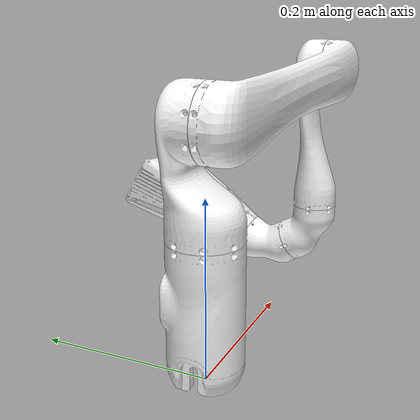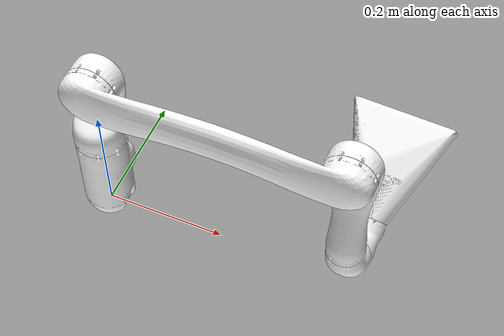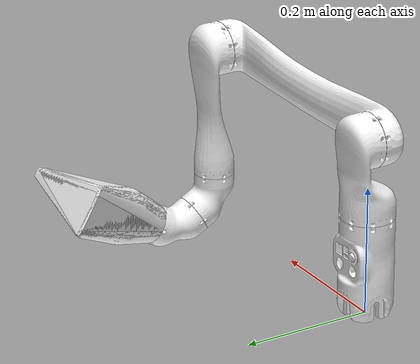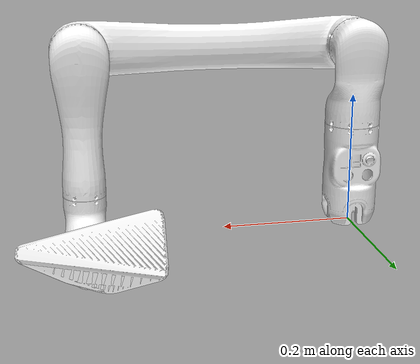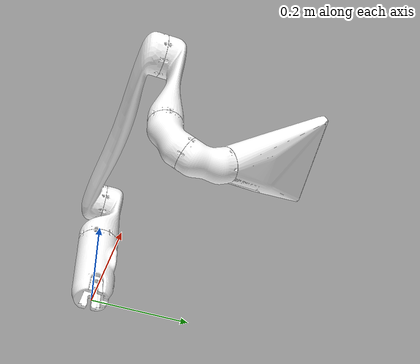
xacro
<?xml version="1.0"?>
<robot xmlns:xacro="http://www.ros.org/wiki/xacro"
       name="jaco2" >

  <!-- common stuff -->
  <xacro:include filename="$(find jaco2)/urdf/gazebo.urdf.xacro" />

  <!-- jaco2 -->
  <xacro:include filename="$(find jaco2)/urdf/jaco2.urdf.xacro" />

  <link name="world"/>
  <joint name="world_joint" type="fixed">
    <parent link="world"/>
    <child link="root"/>
    <origin rpy="0.0 0.0 0.0" xyz="0.0 0.0 0.0"/>
  </joint>

</robot>

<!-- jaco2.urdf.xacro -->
<robot xmlns:xacro="http://www.ros.org/wiki/xacro">

  <xacro:include filename="$(find jaco2)/urdf/jaco2.transmission.xacro" />

    <link name="root">
      <visual>
	<geometry>
	  <mesh filename="package://jaco2/meshes/root.STL" />
	</geometry>
	<material name="Black">
	  <color rgba="1 1 1 1" />
	</material>
      </visual>
      <collision>
	<geometry>
          <mesh filename="package://jaco2/meshes/root.stl" />
	</geometry>
      </collision>
    </link>

    <gazebo reference="root">
        <material>Gazebo/Grey</material>
    </gazebo>

    <link name="jaco_link_base">
      <inertial>
        <origin xyz="-0.00048086 -0.0009379 0.062122" rpy="0.0 0.0 0.0" />
	<mass value="0.0064" />
	<inertia
	  ixx="0.00052184"
	  ixy="-2.8998E-06"
	  ixz="-4.2007E-06"
	  iyy="0.0005163"
	  iyz="1.4357E-05"
	  izz="0.00025116" />
      </inertial>
      <visual>
	<geometry>
	  <mesh filename="package://jaco2/meshes/jaco_link_base.STL" />
	</geometry>
	<material name="Black">
	  <color rgba="1 1 1 1" />
	</material>
      </visual>
      <collision>
	<geometry>
	  <mesh filename="package://jaco2/meshes/jaco_link_base.stl" />
	</geometry>
      </collision>
    </link>

    <gazebo reference="jaco_link_base">
        <material>Gazebo/Grey</material>
    </gazebo>

    <joint name="jaco_joint_base" type="fixed">
      <origin xyz="0.0 0.0 0.0" rpy="0.0 0.0 0.0" />
      <parent link="root" />
      <child link="jaco_link_base" />
      <axis xyz="0.0 0 0" />
    </joint>

    <link name="jaco_link_1">
      <inertial>
        <origin xyz="-2.5613E-05 0.010847 -0.049232" rpy="0 0 0" />
        <mass value="0.0060" />
        <inertia
	  ixx="0.00022732"
	  ixy="-9.3733E-09"
	  ixz="-1.4106E-07"
	  iyy="0.00024309"
	  iyz="2.9898E-05"
	  izz="9.0733E-05" />
      </inertial>
      <visual>
	<geometry>
	  <mesh filename="package://jaco2/meshes/jaco_link_1.STL" />
	</geometry>
	<material name="Black">
	  <color rgba="1 1 1 1" />
	</material>
      </visual>
      <collision>
	<geometry>
	  <mesh filename="package://jaco2/meshes/jaco_link_1.stl" />
	</geometry>
      </collision>
    </link>

    <gazebo reference="jaco_link_1">
        <material>Gazebo/Grey</material>
    </gazebo>

    <joint name="jaco_joint_1" type="revolute">
      <origin xyz="0.0 0.0 0.2755" rpy="0.0 0.0 0.0" />
      <parent link="jaco_link_base" />
      <child link="jaco_link_1" />
      <axis xyz="0.0 0.0 -1.0" />
      <limit effort="150.0" lower="-6.2831853" upper="6.2831853" velocity="3.15"/>
      <dynamics damping="0.0" friction="0.0"/>
    </joint>

    <link name="jaco_link_2">
      <inertial>
        <origin xyz="0.20365 4.2202E-05 -0.033866" rpy="0.0 0.0 0.0" />
	<mass value="0.0057" />
	<inertia
	  ixx="0.00012024"
	  ixy="1.6528E-07"
	  ixz="-0.00016726"
	  iyy="0.0035495"
	  iyz="-2.6936E-08"
	  izz="0.0036058" />
      </inertial>
      <visual>
	<geometry>
	  <mesh filename="package://jaco2/meshes/jaco_link_2.STL" />
	</geometry>
	<material name="Black">
	  <color rgba="1 1 1 1" />
	</material>
      </visual>
      <collision>
	<geometry>
	  <mesh filename="package://jaco2/meshes/jaco_link_2.stl" />
	</geometry>
      </collision>
    </link>

    <gazebo reference="jaco_link_2">
        <material>Gazebo/Grey</material>
    </gazebo>

    <joint name="jaco_joint_2" type="revolute">
      <origin xyz="0.0 0.0 0.0" rpy="-1.571 -0.0047116 0.047796" />
      <parent link="jaco_link_1" />
      <child link="jaco_link_2" />
      <axis xyz="0.047778 0 0.99886" />
      <limit lower="-3.8223" upper="0.69813" effort="150.0" velocity="3.15" />
      <dynamics damping="0.0" friction="0.0"/>
    </joint>

    <link name="jaco_link_3">
      <inertial>
        <origin xyz="3.97161549881009E-06 -0.0639591049584705 -0.00776484013323698" rpy="0 0 0" />
        <mass value="0.0060" />
	<inertia
	  ixx="0.000394848359931103"
	  ixy="1.3834611049663E-07"
	  ixz="-1.13410769041363E-08"
	  iyy="5.28367288413468E-05"
	  iyz="-1.41783013459014E-05"
	  izz="0.00041829974857606" />
      </inertial>
      <visual>
        <geometry>
          <mesh filename="package://jaco2/meshes/jaco_link_3.STL" />
        </geometry>
        <material name="Black">
	  <color rgba="1 1 1 1" />
	</material>
      </visual>
      <collision>
	<geometry>
	  <mesh filename="package://jaco2/meshes/jaco_link_3.stl" />
	</geometry>
      </collision>
    </link>

    <gazebo reference="jaco_link_3">
        <material>Gazebo/Grey</material>
    </gazebo>

    <joint name="jaco_joint_3" type="revolute">
      <origin xyz="0.41 0 -0.0098" rpy="3.1416 0.047796 -8.7885E-05" />
      <parent link="jaco_link_2" />
      <child link="jaco_link_3" />
      <axis xyz="0.0 0.0 1.0" />
      <limit lower="-1.2392" upper="4.3808" effort="150.0" velocity="3.15" />
      <dynamics damping="0.0" friction="0.0"/>
    </joint>

    <link name="jaco_link_4">
      <inertial>
        <origin xyz="-8.9415E-06 0.0076371 0.0043996" rpy="0.0 0.0 0.0" />
        <mass value="0.0037" />
        <inertia
          ixx="3.2741E-05"
	  ixy="-4.6123E-09"
	  ixz="2.119E-09"
	  iyy="3.3128E-05"
	  iyz="-3.6398E-06"
	  izz="2.8899E-05" />
	</inertial>
	<visual>
	  <geometry>
	    <mesh filename="package://jaco2/meshes/jaco_link_4.STL" />
	  </geometry>
	  <material name="Black">
	    <color rgba="1 1 1 1" />
	  </material>
	</visual>
	<collision>
	  <geometry>
	    <mesh filename="package://jaco2/meshes/jaco_link_4.stl" />
	  </geometry>
	</collision>
      </link>

      <gazebo reference="jaco_link_4">
          <material>Gazebo/Grey</material>
      </gazebo>

      <joint name="jaco_joint_4" type="revolute">
	<origin xyz="0 -0.250007041555164 0" rpy="-1.5707963267949 -0.00872928550116707 -2.51544487854265E-17" />
	<parent link="jaco_link_3" />
	<child link="jaco_link_4" />
	<axis xyz="0.0 0.0 1.0" />
	<limit effort="150.0" lower="-6.2831853" upper="6.2831853" velocity="3.15"/>
	<dynamics damping="0.0" friction="0.0"/>
      </joint>

      <link name="jaco_link_5">
        <inertial>
          <origin xyz="-8.03918582154006E-06 0.00763799005245824 0.00439948624791736" rpy="0 0 0" />
	  <mass value="0.0037" />
	  <inertia
	    ixx="3.27418465657114E-05"
	    ixy="-4.99510510229687E-09"
	    ixz="2.41495135849963E-09"
	    iyy="3.31268784561237E-05"
	    iyz="-3.63861583896267E-06"
	    izz="2.88972602355983E-05" />
	</inertial>
	<visual>
	  <geometry>
	    <mesh filename="package://jaco2/meshes/jaco_link_5.STL" />
	  </geometry>
	  <material name="Black">
            <color rgba="1 1 1 1.0" />
	  </material>
	</visual>
	<collision>
	  <geometry>
	    <mesh filename="package://jaco2/meshes/jaco_link_5.stl" />
	  </geometry>
	</collision>
      </link>

      <gazebo reference="jaco_link_5">
          <material>Gazebo/Grey</material>
      </gazebo>

      <joint name="jaco_joint_5" type="revolute">
	<origin xyz="0 0.0740573683548742 -0.0427570415551623" rpy="1.04719681759719 -0.00159413288422581 0.000920373959407822" />
	<parent link="jaco_link_4" />
	<child link="jaco_link_5" />
	<axis xyz="0.0 0.0 1.0" />
	<limit effort="150.0" lower="-6.2831853" upper="6.2831853" velocity="3.15"/>
	<dynamics damping="0.0" friction="0.0"/>
      </joint>

      <link name="jaco_link_6">
	<inertial>
	  <origin xyz="-0.00732468781232704 -0.000118167445930656 0.0136767983896894" rpy="0 0 0" />
	  <mass value="0.0037" />
	  <inertia
	    ixx="0.000621360138889287"
	    ixy="-5.60714046582573E-07"
	    ixz="5.21840696017167E-05"
	    iyy="0.000845244363679134"
	    iyz="1.34223091504283E-06"
	    izz="0.000531606778571858" />
	</inertial>
	<visual>
	  <geometry>
	    <mesh filename="package://jaco2/meshes/jaco_link_6.stl" />
	  </geometry>
	  <material name="Black">
            <color rgba="1 1 1 1" />
	  </material>
        </visual>
        <collision>
	  <geometry>
	    <mesh filename="package://jaco2/meshes/jaco_link_6.stl" />
	  </geometry>
	</collision>
      </link>

      <gazebo reference="jaco_link_6">
        <material>Gazebo/Grey</material>
      </gazebo>

      <joint name="jaco_joint_6" type="revolute">
	<origin xyz="0 0.123631224555881 -0.0713785207775813" rpy="1.04717823212089 0.00818052578169576 -0.00472315168238664" />
	<parent link="jaco_link_5" />
	<child link="jaco_link_6" />
	<axis xyz="0.0 0.0 1.0" />
	<limit effort="150.0" lower="-6.2831853" upper="6.2831853" velocity="3.15"/>
	<dynamics damping="0.0" friction="0.0"/>
      </joint>

      <link name="jaco_link_hand">
        <inertial>
          <origin xyz="-0.00732497926601078 9.84573300621336E-05 -0.0136767983896894" rpy="0.0 0.0 0.0" />
          <mass value="0.0068" />
          <inertia
            ixx="0.00062136477756224"
	    ixy="1.16314419699673E-06"
	    ixz="-5.21874924280308E-05"
	    iyy="0.000845239725006181"
	    iyz="1.20180618252278E-06"
	    izz="0.000531606778571858" />
	  </inertial>
	<visual>
	  <geometry>
	    <mesh filename="package://jaco2/meshes/jaco_link_hand.stl" />
	  </geometry>
	  <material name="Black">
	    <color rgba="1 1 1 1" />
	  </material>
	</visual>
	<collision>
	  <geometry>
	    <mesh filename="package://jaco2/meshes/jaco_link_hand.stl" />
	  </geometry>
	</collision>
      </link>

      <gazebo reference="jaco_link_hand">
        <material>Gazebo/Grey</material>
      </gazebo>

      <joint name="jaco_joint_hand" type="fixed">
	<origin xyz="0.0 0.0 0.0" rpy="-3.14159265358979 0 0.00269086032742485" />
	<parent link="jaco_link_6" />
	<child link="jaco_link_hand" />
	<axis xyz="0.0 0.0 0.0" />
      </joint>

    <xacro:jaco2_transmission/>
    <xacro:jaco2_gazebo />

</robot>
